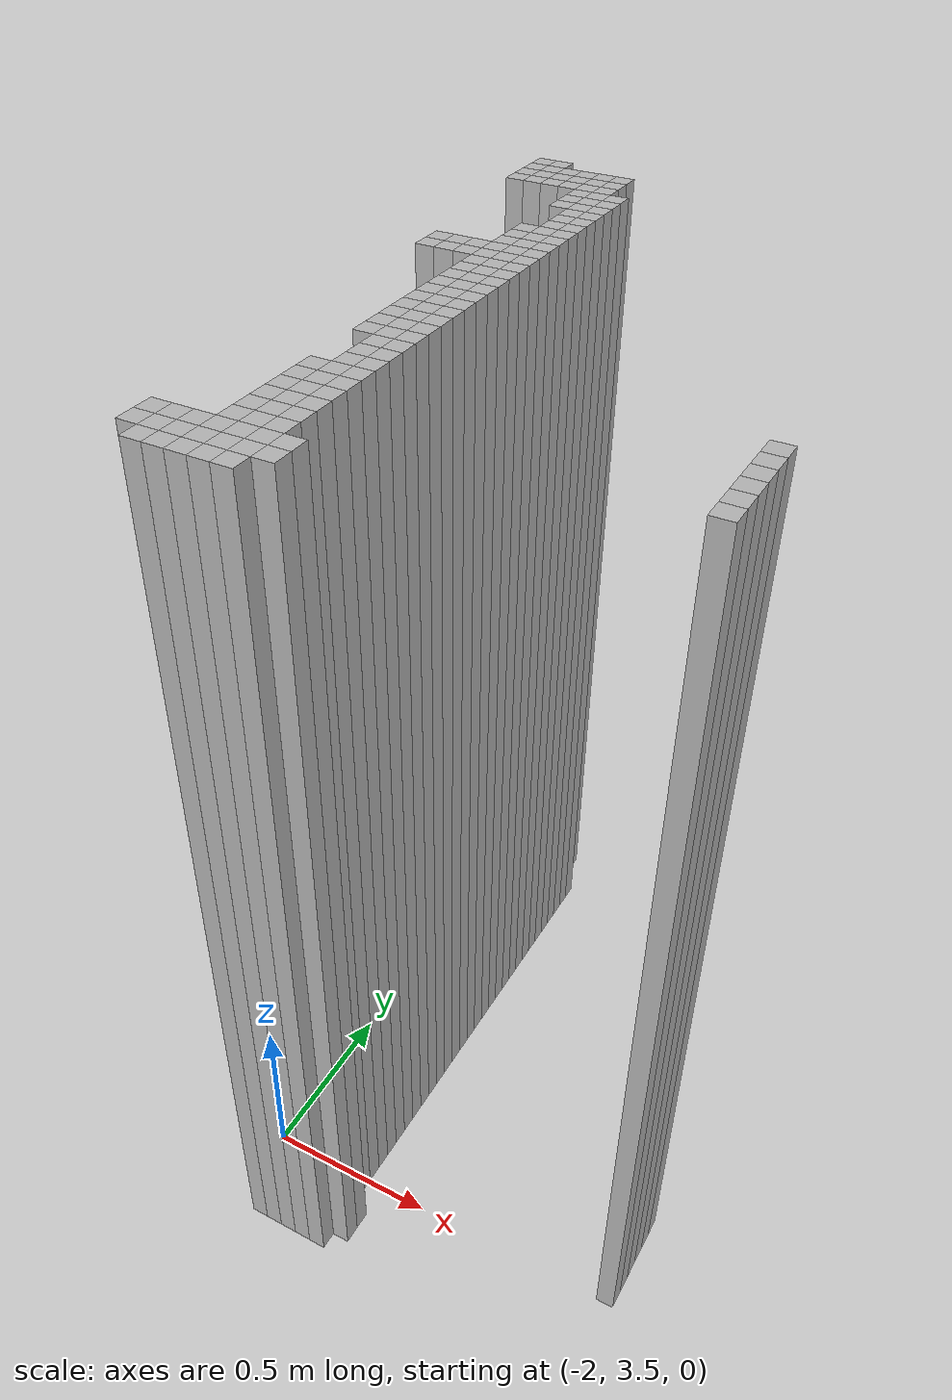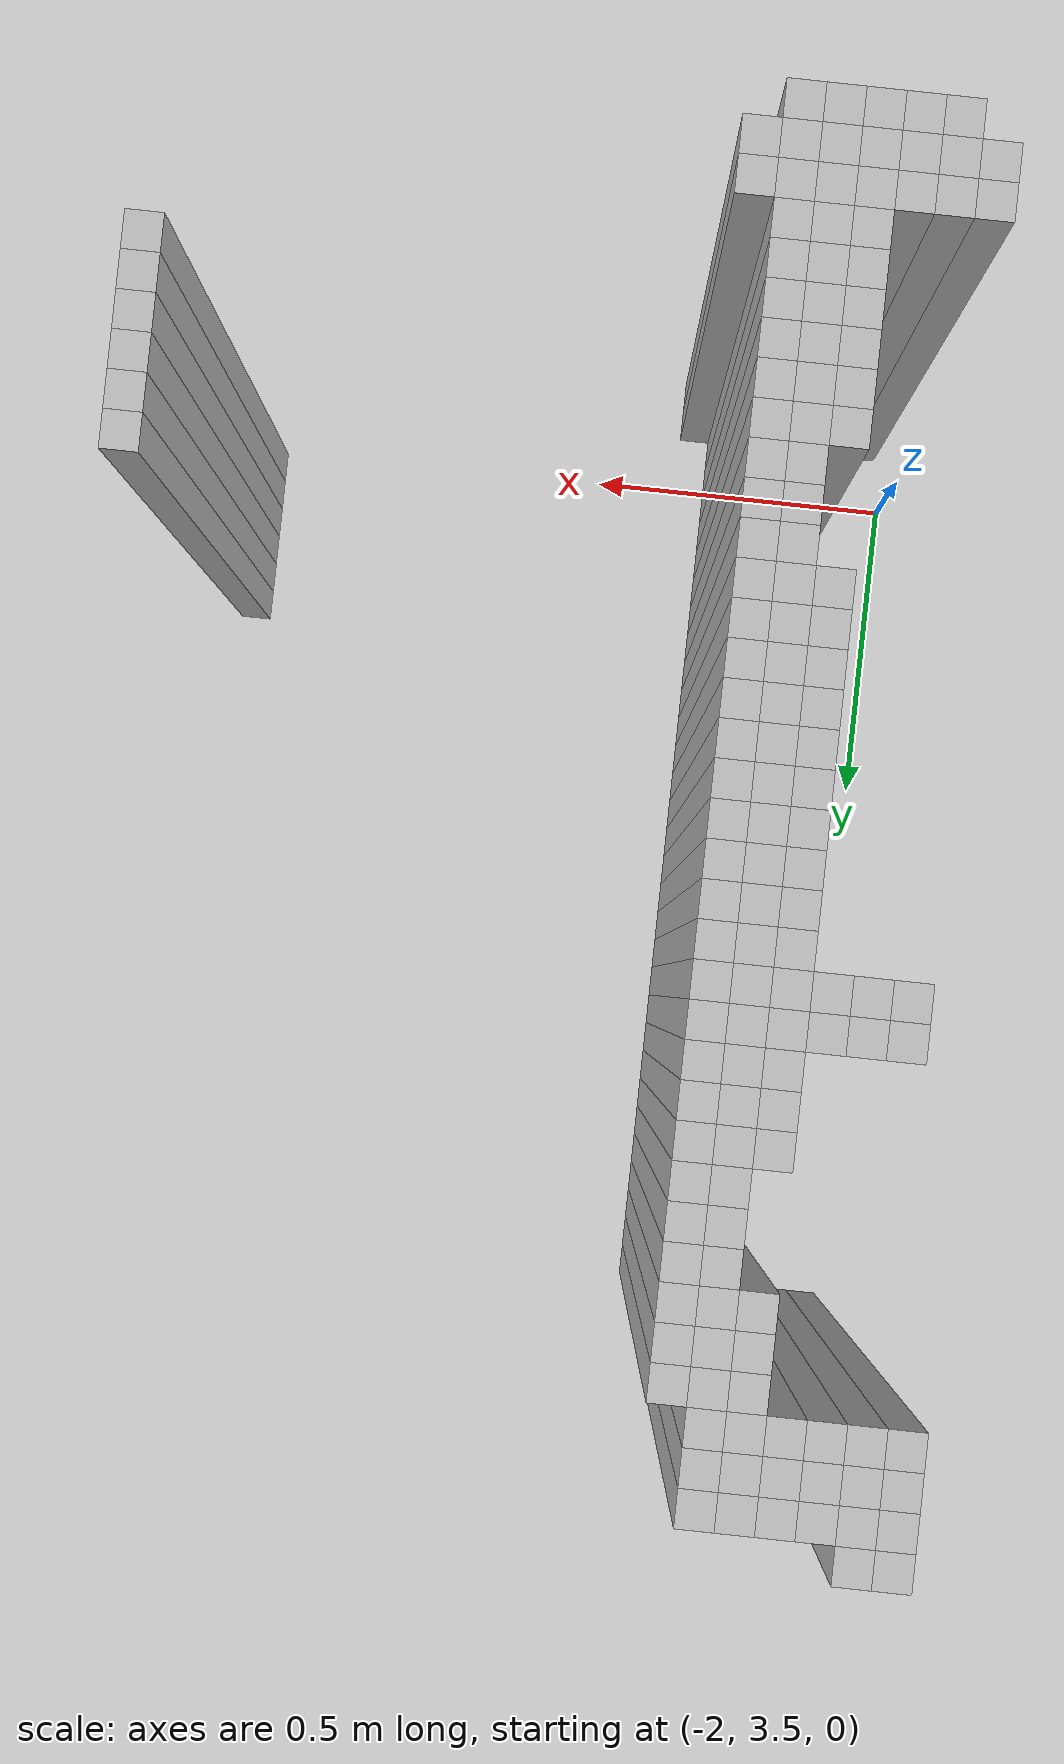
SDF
<sdf version="1.9">
 <world name="map_world">
  <model name="wall_183_52">
   <static>true</static>
   <pose>-2.011 5.080 1.250 0 0 0</pose>
   <link name="link">
    <collision name="collision"><geometry><box><size>0.050 0.050 2.500</size></box></geometry></collision>
    <visual name="visual"><geometry><box><size>0.050 0.050 2.500</size></box></geometry></visual>
   </link>
  </model>
  <model name="wall_184_52">
   <static>true</static>
   <pose>-1.961 5.080 1.250 0 0 0</pose>
   <link name="link">
    <collision name="collision"><geometry><box><size>0.050 0.050 2.500</size></box></geometry></collision>
    <visual name="visual"><geometry><box><size>0.050 0.050 2.500</size></box></geometry></visual>
   </link>
  </model>
  <model name="wall_183_53">
   <static>true</static>
   <pose>-2.011 5.030 1.250 0 0 0</pose>
   <link name="link">
    <collision name="collision"><geometry><box><size>0.050 0.050 2.500</size></box></geometry></collision>
    <visual name="visual"><geometry><box><size>0.050 0.050 2.500</size></box></geometry></visual>
   </link>
  </model>
  <model name="wall_184_53">
   <static>true</static>
   <pose>-1.961 5.030 1.250 0 0 0</pose>
   <link name="link">
    <collision name="collision"><geometry><box><size>0.050 0.050 2.500</size></box></geometry></collision>
    <visual name="visual"><geometry><box><size>0.050 0.050 2.500</size></box></geometry></visual>
   </link>
  </model>
  <model name="wall_185_53">
   <static>true</static>
   <pose>-1.911 5.030 1.250 0 0 0</pose>
   <link name="link">
    <collision name="collision"><geometry><box><size>0.050 0.050 2.500</size></box></geometry></collision>
    <visual name="visual"><geometry><box><size>0.050 0.050 2.500</size></box></geometry></visual>
   </link>
  </model>
  <model name="wall_186_53">
   <static>true</static>
   <pose>-1.861 5.030 1.250 0 0 0</pose>
   <link name="link">
    <collision name="collision"><geometry><box><size>0.050 0.050 2.500</size></box></geometry></collision>
    <visual name="visual"><geometry><box><size>0.050 0.050 2.500</size></box></geometry></visual>
   </link>
  </model>
  <model name="wall_187_53">
   <static>true</static>
   <pose>-1.811 5.030 1.250 0 0 0</pose>
   <link name="link">
    <collision name="collision"><geometry><box><size>0.050 0.050 2.500</size></box></geometry></collision>
    <visual name="visual"><geometry><box><size>0.050 0.050 2.500</size></box></geometry></visual>
   </link>
  </model>
  <model name="wall_188_53">
   <static>true</static>
   <pose>-1.761 5.030 1.250 0 0 0</pose>
   <link name="link">
    <collision name="collision"><geometry><box><size>0.050 0.050 2.500</size></box></geometry></collision>
    <visual name="visual"><geometry><box><size>0.050 0.050 2.500</size></box></geometry></visual>
   </link>
  </model>
  <model name="wall_183_54">
   <static>true</static>
   <pose>-2.011 4.980 1.250 0 0 0</pose>
   <link name="link">
    <collision name="collision"><geometry><box><size>0.050 0.050 2.500</size></box></geometry></collision>
    <visual name="visual"><geometry><box><size>0.050 0.050 2.500</size></box></geometry></visual>
   </link>
  </model>
  <model name="wall_184_54">
   <static>true</static>
   <pose>-1.961 4.980 1.250 0 0 0</pose>
   <link name="link">
    <collision name="collision"><geometry><box><size>0.050 0.050 2.500</size></box></geometry></collision>
    <visual name="visual"><geometry><box><size>0.050 0.050 2.500</size></box></geometry></visual>
   </link>
  </model>
  <model name="wall_185_54">
   <static>true</static>
   <pose>-1.911 4.980 1.250 0 0 0</pose>
   <link name="link">
    <collision name="collision"><geometry><box><size>0.050 0.050 2.500</size></box></geometry></collision>
    <visual name="visual"><geometry><box><size>0.050 0.050 2.500</size></box></geometry></visual>
   </link>
  </model>
  <model name="wall_186_54">
   <static>true</static>
   <pose>-1.861 4.980 1.250 0 0 0</pose>
   <link name="link">
    <collision name="collision"><geometry><box><size>0.050 0.050 2.500</size></box></geometry></collision>
    <visual name="visual"><geometry><box><size>0.050 0.050 2.500</size></box></geometry></visual>
   </link>
  </model>
  <model name="wall_187_54">
   <static>true</static>
   <pose>-1.811 4.980 1.250 0 0 0</pose>
   <link name="link">
    <collision name="collision"><geometry><box><size>0.050 0.050 2.500</size></box></geometry></collision>
    <visual name="visual"><geometry><box><size>0.050 0.050 2.500</size></box></geometry></visual>
   </link>
  </model>
  <model name="wall_188_54">
   <static>true</static>
   <pose>-1.761 4.980 1.250 0 0 0</pose>
   <link name="link">
    <collision name="collision"><geometry><box><size>0.050 0.050 2.500</size></box></geometry></collision>
    <visual name="visual"><geometry><box><size>0.050 0.050 2.500</size></box></geometry></visual>
   </link>
  </model>
  <model name="wall_183_55">
   <static>true</static>
   <pose>-2.011 4.930 1.250 0 0 0</pose>
   <link name="link">
    <collision name="collision"><geometry><box><size>0.050 0.050 2.500</size></box></geometry></collision>
    <visual name="visual"><geometry><box><size>0.050 0.050 2.500</size></box></geometry></visual>
   </link>
  </model>
  <model name="wall_184_55">
   <static>true</static>
   <pose>-1.961 4.930 1.250 0 0 0</pose>
   <link name="link">
    <collision name="collision"><geometry><box><size>0.050 0.050 2.500</size></box></geometry></collision>
    <visual name="visual"><geometry><box><size>0.050 0.050 2.500</size></box></geometry></visual>
   </link>
  </model>
  <model name="wall_185_55">
   <static>true</static>
   <pose>-1.911 4.930 1.250 0 0 0</pose>
   <link name="link">
    <collision name="collision"><geometry><box><size>0.050 0.050 2.500</size></box></geometry></collision>
    <visual name="visual"><geometry><box><size>0.050 0.050 2.500</size></box></geometry></visual>
   </link>
  </model>
  <model name="wall_186_55">
   <static>true</static>
   <pose>-1.861 4.930 1.250 0 0 0</pose>
   <link name="link">
    <collision name="collision"><geometry><box><size>0.050 0.050 2.500</size></box></geometry></collision>
    <visual name="visual"><geometry><box><size>0.050 0.050 2.500</size></box></geometry></visual>
   </link>
  </model>
  <model name="wall_187_55">
   <static>true</static>
   <pose>-1.811 4.930 1.250 0 0 0</pose>
   <link name="link">
    <collision name="collision"><geometry><box><size>0.050 0.050 2.500</size></box></geometry></collision>
    <visual name="visual"><geometry><box><size>0.050 0.050 2.500</size></box></geometry></visual>
   </link>
  </model>
  <model name="wall_188_55">
   <static>true</static>
   <pose>-1.761 4.930 1.250 0 0 0</pose>
   <link name="link">
    <collision name="collision"><geometry><box><size>0.050 0.050 2.500</size></box></geometry></collision>
    <visual name="visual"><geometry><box><size>0.050 0.050 2.500</size></box></geometry></visual>
   </link>
  </model>
  <model name="wall_187_56">
   <static>true</static>
   <pose>-1.811 4.880 1.250 0 0 0</pose>
   <link name="link">
    <collision name="collision"><geometry><box><size>0.050 0.050 2.500</size></box></geometry></collision>
    <visual name="visual"><geometry><box><size>0.050 0.050 2.500</size></box></geometry></visual>
   </link>
  </model>
  <model name="wall_188_56">
   <static>true</static>
   <pose>-1.761 4.880 1.250 0 0 0</pose>
   <link name="link">
    <collision name="collision"><geometry><box><size>0.050 0.050 2.500</size></box></geometry></collision>
    <visual name="visual"><geometry><box><size>0.050 0.050 2.500</size></box></geometry></visual>
   </link>
  </model>
  <model name="wall_189_56">
   <static>true</static>
   <pose>-1.711 4.880 1.250 0 0 0</pose>
   <link name="link">
    <collision name="collision"><geometry><box><size>0.050 0.050 2.500</size></box></geometry></collision>
    <visual name="visual"><geometry><box><size>0.050 0.050 2.500</size></box></geometry></visual>
   </link>
  </model>
  <model name="wall_187_57">
   <static>true</static>
   <pose>-1.811 4.830 1.250 0 0 0</pose>
   <link name="link">
    <collision name="collision"><geometry><box><size>0.050 0.050 2.500</size></box></geometry></collision>
    <visual name="visual"><geometry><box><size>0.050 0.050 2.500</size></box></geometry></visual>
   </link>
  </model>
  <model name="wall_188_57">
   <static>true</static>
   <pose>-1.761 4.830 1.250 0 0 0</pose>
   <link name="link">
    <collision name="collision"><geometry><box><size>0.050 0.050 2.500</size></box></geometry></collision>
    <visual name="visual"><geometry><box><size>0.050 0.050 2.500</size></box></geometry></visual>
   </link>
  </model>
  <model name="wall_189_57">
   <static>true</static>
   <pose>-1.711 4.830 1.250 0 0 0</pose>
   <link name="link">
    <collision name="collision"><geometry><box><size>0.050 0.050 2.500</size></box></geometry></collision>
    <visual name="visual"><geometry><box><size>0.050 0.050 2.500</size></box></geometry></visual>
   </link>
  </model>
  <model name="wall_187_58">
   <static>true</static>
   <pose>-1.811 4.780 1.250 0 0 0</pose>
   <link name="link">
    <collision name="collision"><geometry><box><size>0.050 0.050 2.500</size></box></geometry></collision>
    <visual name="visual"><geometry><box><size>0.050 0.050 2.500</size></box></geometry></visual>
   </link>
  </model>
  <model name="wall_188_58">
   <static>true</static>
   <pose>-1.761 4.780 1.250 0 0 0</pose>
   <link name="link">
    <collision name="collision"><geometry><box><size>0.050 0.050 2.500</size></box></geometry></collision>
    <visual name="visual"><geometry><box><size>0.050 0.050 2.500</size></box></geometry></visual>
   </link>
  </model>
  <model name="wall_189_58">
   <static>true</static>
   <pose>-1.711 4.780 1.250 0 0 0</pose>
   <link name="link">
    <collision name="collision"><geometry><box><size>0.050 0.050 2.500</size></box></geometry></collision>
    <visual name="visual"><geometry><box><size>0.050 0.050 2.500</size></box></geometry></visual>
   </link>
  </model>
  <model name="wall_188_59">
   <static>true</static>
   <pose>-1.761 4.730 1.250 0 0 0</pose>
   <link name="link">
    <collision name="collision"><geometry><box><size>0.050 0.050 2.500</size></box></geometry></collision>
    <visual name="visual"><geometry><box><size>0.050 0.050 2.500</size></box></geometry></visual>
   </link>
  </model>
  <model name="wall_189_59">
   <static>true</static>
   <pose>-1.711 4.730 1.250 0 0 0</pose>
   <link name="link">
    <collision name="collision"><geometry><box><size>0.050 0.050 2.500</size></box></geometry></collision>
    <visual name="visual"><geometry><box><size>0.050 0.050 2.500</size></box></geometry></visual>
   </link>
  </model>
  <model name="wall_188_60">
   <static>true</static>
   <pose>-1.761 4.680 1.250 0 0 0</pose>
   <link name="link">
    <collision name="collision"><geometry><box><size>0.050 0.050 2.500</size></box></geometry></collision>
    <visual name="visual"><geometry><box><size>0.050 0.050 2.500</size></box></geometry></visual>
   </link>
  </model>
  <model name="wall_189_60">
   <static>true</static>
   <pose>-1.711 4.680 1.250 0 0 0</pose>
   <link name="link">
    <collision name="collision"><geometry><box><size>0.050 0.050 2.500</size></box></geometry></collision>
    <visual name="visual"><geometry><box><size>0.050 0.050 2.500</size></box></geometry></visual>
   </link>
  </model>
  <model name="wall_188_61">
   <static>true</static>
   <pose>-1.761 4.630 1.250 0 0 0</pose>
   <link name="link">
    <collision name="collision"><geometry><box><size>0.050 0.050 2.500</size></box></geometry></collision>
    <visual name="visual"><geometry><box><size>0.050 0.050 2.500</size></box></geometry></visual>
   </link>
  </model>
  <model name="wall_189_61">
   <static>true</static>
   <pose>-1.711 4.630 1.250 0 0 0</pose>
   <link name="link">
    <collision name="collision"><geometry><box><size>0.050 0.050 2.500</size></box></geometry></collision>
    <visual name="visual"><geometry><box><size>0.050 0.050 2.500</size></box></geometry></visual>
   </link>
  </model>
  <model name="wall_187_62">
   <static>true</static>
   <pose>-1.811 4.580 1.250 0 0 0</pose>
   <link name="link">
    <collision name="collision"><geometry><box><size>0.050 0.050 2.500</size></box></geometry></collision>
    <visual name="visual"><geometry><box><size>0.050 0.050 2.500</size></box></geometry></visual>
   </link>
  </model>
  <model name="wall_188_62">
   <static>true</static>
   <pose>-1.761 4.580 1.250 0 0 0</pose>
   <link name="link">
    <collision name="collision"><geometry><box><size>0.050 0.050 2.500</size></box></geometry></collision>
    <visual name="visual"><geometry><box><size>0.050 0.050 2.500</size></box></geometry></visual>
   </link>
  </model>
  <model name="wall_189_62">
   <static>true</static>
   <pose>-1.711 4.580 1.250 0 0 0</pose>
   <link name="link">
    <collision name="collision"><geometry><box><size>0.050 0.050 2.500</size></box></geometry></collision>
    <visual name="visual"><geometry><box><size>0.050 0.050 2.500</size></box></geometry></visual>
   </link>
  </model>
  <model name="wall_187_63">
   <static>true</static>
   <pose>-1.811 4.530 1.250 0 0 0</pose>
   <link name="link">
    <collision name="collision"><geometry><box><size>0.050 0.050 2.500</size></box></geometry></collision>
    <visual name="visual"><geometry><box><size>0.050 0.050 2.500</size></box></geometry></visual>
   </link>
  </model>
  <model name="wall_188_63">
   <static>true</static>
   <pose>-1.761 4.530 1.250 0 0 0</pose>
   <link name="link">
    <collision name="collision"><geometry><box><size>0.050 0.050 2.500</size></box></geometry></collision>
    <visual name="visual"><geometry><box><size>0.050 0.050 2.500</size></box></geometry></visual>
   </link>
  </model>
  <model name="wall_189_63">
   <static>true</static>
   <pose>-1.711 4.530 1.250 0 0 0</pose>
   <link name="link">
    <collision name="collision"><geometry><box><size>0.050 0.050 2.500</size></box></geometry></collision>
    <visual name="visual"><geometry><box><size>0.050 0.050 2.500</size></box></geometry></visual>
   </link>
  </model>
  <model name="wall_187_64">
   <static>true</static>
   <pose>-1.811 4.480 1.250 0 0 0</pose>
   <link name="link">
    <collision name="collision"><geometry><box><size>0.050 0.050 2.500</size></box></geometry></collision>
    <visual name="visual"><geometry><box><size>0.050 0.050 2.500</size></box></geometry></visual>
   </link>
  </model>
  <model name="wall_188_64">
   <static>true</static>
   <pose>-1.761 4.480 1.250 0 0 0</pose>
   <link name="link">
    <collision name="collision"><geometry><box><size>0.050 0.050 2.500</size></box></geometry></collision>
    <visual name="visual"><geometry><box><size>0.050 0.050 2.500</size></box></geometry></visual>
   </link>
  </model>
  <model name="wall_189_64">
   <static>true</static>
   <pose>-1.711 4.480 1.250 0 0 0</pose>
   <link name="link">
    <collision name="collision"><geometry><box><size>0.050 0.050 2.500</size></box></geometry></collision>
    <visual name="visual"><geometry><box><size>0.050 0.050 2.500</size></box></geometry></visual>
   </link>
  </model>
  <model name="wall_184_65">
   <static>true</static>
   <pose>-1.961 4.430 1.250 0 0 0</pose>
   <link name="link">
    <collision name="collision"><geometry><box><size>0.050 0.050 2.500</size></box></geometry></collision>
    <visual name="visual"><geometry><box><size>0.050 0.050 2.500</size></box></geometry></visual>
   </link>
  </model>
  <model name="wall_185_65">
   <static>true</static>
   <pose>-1.911 4.430 1.250 0 0 0</pose>
   <link name="link">
    <collision name="collision"><geometry><box><size>0.050 0.050 2.500</size></box></geometry></collision>
    <visual name="visual"><geometry><box><size>0.050 0.050 2.500</size></box></geometry></visual>
   </link>
  </model>
  <model name="wall_186_65">
   <static>true</static>
   <pose>-1.861 4.430 1.250 0 0 0</pose>
   <link name="link">
    <collision name="collision"><geometry><box><size>0.050 0.050 2.500</size></box></geometry></collision>
    <visual name="visual"><geometry><box><size>0.050 0.050 2.500</size></box></geometry></visual>
   </link>
  </model>
  <model name="wall_187_65">
   <static>true</static>
   <pose>-1.811 4.430 1.250 0 0 0</pose>
   <link name="link">
    <collision name="collision"><geometry><box><size>0.050 0.050 2.500</size></box></geometry></collision>
    <visual name="visual"><geometry><box><size>0.050 0.050 2.500</size></box></geometry></visual>
   </link>
  </model>
  <model name="wall_188_65">
   <static>true</static>
   <pose>-1.761 4.430 1.250 0 0 0</pose>
   <link name="link">
    <collision name="collision"><geometry><box><size>0.050 0.050 2.500</size></box></geometry></collision>
    <visual name="visual"><geometry><box><size>0.050 0.050 2.500</size></box></geometry></visual>
   </link>
  </model>
  <model name="wall_189_65">
   <static>true</static>
   <pose>-1.711 4.430 1.250 0 0 0</pose>
   <link name="link">
    <collision name="collision"><geometry><box><size>0.050 0.050 2.500</size></box></geometry></collision>
    <visual name="visual"><geometry><box><size>0.050 0.050 2.500</size></box></geometry></visual>
   </link>
  </model>
  <model name="wall_184_66">
   <static>true</static>
   <pose>-1.961 4.380 1.250 0 0 0</pose>
   <link name="link">
    <collision name="collision"><geometry><box><size>0.050 0.050 2.500</size></box></geometry></collision>
    <visual name="visual"><geometry><box><size>0.050 0.050 2.500</size></box></geometry></visual>
   </link>
  </model>
  <model name="wall_185_66">
   <static>true</static>
   <pose>-1.911 4.380 1.250 0 0 0</pose>
   <link name="link">
    <collision name="collision"><geometry><box><size>0.050 0.050 2.500</size></box></geometry></collision>
    <visual name="visual"><geometry><box><size>0.050 0.050 2.500</size></box></geometry></visual>
   </link>
  </model>
  <model name="wall_186_66">
   <static>true</static>
   <pose>-1.861 4.380 1.250 0 0 0</pose>
   <link name="link">
    <collision name="collision"><geometry><box><size>0.050 0.050 2.500</size></box></geometry></collision>
    <visual name="visual"><geometry><box><size>0.050 0.050 2.500</size></box></geometry></visual>
   </link>
  </model>
  <model name="wall_187_66">
   <static>true</static>
   <pose>-1.811 4.380 1.250 0 0 0</pose>
   <link name="link">
    <collision name="collision"><geometry><box><size>0.050 0.050 2.500</size></box></geometry></collision>
    <visual name="visual"><geometry><box><size>0.050 0.050 2.500</size></box></geometry></visual>
   </link>
  </model>
  <model name="wall_188_66">
   <static>true</static>
   <pose>-1.761 4.380 1.250 0 0 0</pose>
   <link name="link">
    <collision name="collision"><geometry><box><size>0.050 0.050 2.500</size></box></geometry></collision>
    <visual name="visual"><geometry><box><size>0.050 0.050 2.500</size></box></geometry></visual>
   </link>
  </model>
  <model name="wall_189_66">
   <static>true</static>
   <pose>-1.711 4.380 1.250 0 0 0</pose>
   <link name="link">
    <collision name="collision"><geometry><box><size>0.050 0.050 2.500</size></box></geometry></collision>
    <visual name="visual"><geometry><box><size>0.050 0.050 2.500</size></box></geometry></visual>
   </link>
  </model>
  <model name="wall_187_67">
   <static>true</static>
   <pose>-1.811 4.330 1.250 0 0 0</pose>
   <link name="link">
    <collision name="collision"><geometry><box><size>0.050 0.050 2.500</size></box></geometry></collision>
    <visual name="visual"><geometry><box><size>0.050 0.050 2.500</size></box></geometry></visual>
   </link>
  </model>
  <model name="wall_188_67">
   <static>true</static>
   <pose>-1.761 4.330 1.250 0 0 0</pose>
   <link name="link">
    <collision name="collision"><geometry><box><size>0.050 0.050 2.500</size></box></geometry></collision>
    <visual name="visual"><geometry><box><size>0.050 0.050 2.500</size></box></geometry></visual>
   </link>
  </model>
  <model name="wall_189_67">
   <static>true</static>
   <pose>-1.711 4.330 1.250 0 0 0</pose>
   <link name="link">
    <collision name="collision"><geometry><box><size>0.050 0.050 2.500</size></box></geometry></collision>
    <visual name="visual"><geometry><box><size>0.050 0.050 2.500</size></box></geometry></visual>
   </link>
  </model>
  <model name="wall_187_68">
   <static>true</static>
   <pose>-1.811 4.280 1.250 0 0 0</pose>
   <link name="link">
    <collision name="collision"><geometry><box><size>0.050 0.050 2.500</size></box></geometry></collision>
    <visual name="visual"><geometry><box><size>0.050 0.050 2.500</size></box></geometry></visual>
   </link>
  </model>
  <model name="wall_188_68">
   <static>true</static>
   <pose>-1.761 4.280 1.250 0 0 0</pose>
   <link name="link">
    <collision name="collision"><geometry><box><size>0.050 0.050 2.500</size></box></geometry></collision>
    <visual name="visual"><geometry><box><size>0.050 0.050 2.500</size></box></geometry></visual>
   </link>
  </model>
  <model name="wall_189_68">
   <static>true</static>
   <pose>-1.711 4.280 1.250 0 0 0</pose>
   <link name="link">
    <collision name="collision"><geometry><box><size>0.050 0.050 2.500</size></box></geometry></collision>
    <visual name="visual"><geometry><box><size>0.050 0.050 2.500</size></box></geometry></visual>
   </link>
  </model>
  <model name="wall_187_69">
   <static>true</static>
   <pose>-1.811 4.230 1.250 0 0 0</pose>
   <link name="link">
    <collision name="collision"><geometry><box><size>0.050 0.050 2.500</size></box></geometry></collision>
    <visual name="visual"><geometry><box><size>0.050 0.050 2.500</size></box></geometry></visual>
   </link>
  </model>
  <model name="wall_188_69">
   <static>true</static>
   <pose>-1.761 4.230 1.250 0 0 0</pose>
   <link name="link">
    <collision name="collision"><geometry><box><size>0.050 0.050 2.500</size></box></geometry></collision>
    <visual name="visual"><geometry><box><size>0.050 0.050 2.500</size></box></geometry></visual>
   </link>
  </model>
  <model name="wall_189_69">
   <static>true</static>
   <pose>-1.711 4.230 1.250 0 0 0</pose>
   <link name="link">
    <collision name="collision"><geometry><box><size>0.050 0.050 2.500</size></box></geometry></collision>
    <visual name="visual"><geometry><box><size>0.050 0.050 2.500</size></box></geometry></visual>
   </link>
  </model>
  <model name="wall_187_70">
   <static>true</static>
   <pose>-1.811 4.180 1.250 0 0 0</pose>
   <link name="link">
    <collision name="collision"><geometry><box><size>0.050 0.050 2.500</size></box></geometry></collision>
    <visual name="visual"><geometry><box><size>0.050 0.050 2.500</size></box></geometry></visual>
   </link>
  </model>
  <model name="wall_188_70">
   <static>true</static>
   <pose>-1.761 4.180 1.250 0 0 0</pose>
   <link name="link">
    <collision name="collision"><geometry><box><size>0.050 0.050 2.500</size></box></geometry></collision>
    <visual name="visual"><geometry><box><size>0.050 0.050 2.500</size></box></geometry></visual>
   </link>
  </model>
  <model name="wall_189_70">
   <static>true</static>
   <pose>-1.711 4.180 1.250 0 0 0</pose>
   <link name="link">
    <collision name="collision"><geometry><box><size>0.050 0.050 2.500</size></box></geometry></collision>
    <visual name="visual"><geometry><box><size>0.050 0.050 2.500</size></box></geometry></visual>
   </link>
  </model>
  <model name="wall_187_71">
   <static>true</static>
   <pose>-1.811 4.130 1.250 0 0 0</pose>
   <link name="link">
    <collision name="collision"><geometry><box><size>0.050 0.050 2.500</size></box></geometry></collision>
    <visual name="visual"><geometry><box><size>0.050 0.050 2.500</size></box></geometry></visual>
   </link>
  </model>
  <model name="wall_188_71">
   <static>true</static>
   <pose>-1.761 4.130 1.250 0 0 0</pose>
   <link name="link">
    <collision name="collision"><geometry><box><size>0.050 0.050 2.500</size></box></geometry></collision>
    <visual name="visual"><geometry><box><size>0.050 0.050 2.500</size></box></geometry></visual>
   </link>
  </model>
  <model name="wall_189_71">
   <static>true</static>
   <pose>-1.711 4.130 1.250 0 0 0</pose>
   <link name="link">
    <collision name="collision"><geometry><box><size>0.050 0.050 2.500</size></box></geometry></collision>
    <visual name="visual"><geometry><box><size>0.050 0.050 2.500</size></box></geometry></visual>
   </link>
  </model>
  <model name="wall_187_72">
   <static>true</static>
   <pose>-1.811 4.080 1.250 0 0 0</pose>
   <link name="link">
    <collision name="collision"><geometry><box><size>0.050 0.050 2.500</size></box></geometry></collision>
    <visual name="visual"><geometry><box><size>0.050 0.050 2.500</size></box></geometry></visual>
   </link>
  </model>
  <model name="wall_188_72">
   <static>true</static>
   <pose>-1.761 4.080 1.250 0 0 0</pose>
   <link name="link">
    <collision name="collision"><geometry><box><size>0.050 0.050 2.500</size></box></geometry></collision>
    <visual name="visual"><geometry><box><size>0.050 0.050 2.500</size></box></geometry></visual>
   </link>
  </model>
  <model name="wall_189_72">
   <static>true</static>
   <pose>-1.711 4.080 1.250 0 0 0</pose>
   <link name="link">
    <collision name="collision"><geometry><box><size>0.050 0.050 2.500</size></box></geometry></collision>
    <visual name="visual"><geometry><box><size>0.050 0.050 2.500</size></box></geometry></visual>
   </link>
  </model>
  <model name="wall_187_73">
   <static>true</static>
   <pose>-1.811 4.030 1.250 0 0 0</pose>
   <link name="link">
    <collision name="collision"><geometry><box><size>0.050 0.050 2.500</size></box></geometry></collision>
    <visual name="visual"><geometry><box><size>0.050 0.050 2.500</size></box></geometry></visual>
   </link>
  </model>
  <model name="wall_188_73">
   <static>true</static>
   <pose>-1.761 4.030 1.250 0 0 0</pose>
   <link name="link">
    <collision name="collision"><geometry><box><size>0.050 0.050 2.500</size></box></geometry></collision>
    <visual name="visual"><geometry><box><size>0.050 0.050 2.500</size></box></geometry></visual>
   </link>
  </model>
  <model name="wall_189_73">
   <static>true</static>
   <pose>-1.711 4.030 1.250 0 0 0</pose>
   <link name="link">
    <collision name="collision"><geometry><box><size>0.050 0.050 2.500</size></box></geometry></collision>
    <visual name="visual"><geometry><box><size>0.050 0.050 2.500</size></box></geometry></visual>
   </link>
  </model>
  <model name="wall_187_74">
   <static>true</static>
   <pose>-1.811 3.980 1.250 0 0 0</pose>
   <link name="link">
    <collision name="collision"><geometry><box><size>0.050 0.050 2.500</size></box></geometry></collision>
    <visual name="visual"><geometry><box><size>0.050 0.050 2.500</size></box></geometry></visual>
   </link>
  </model>
  <model name="wall_188_74">
   <static>true</static>
   <pose>-1.761 3.980 1.250 0 0 0</pose>
   <link name="link">
    <collision name="collision"><geometry><box><size>0.050 0.050 2.500</size></box></geometry></collision>
    <visual name="visual"><geometry><box><size>0.050 0.050 2.500</size></box></geometry></visual>
   </link>
  </model>
  <model name="wall_189_74">
   <static>true</static>
   <pose>-1.711 3.980 1.250 0 0 0</pose>
   <link name="link">
    <collision name="collision"><geometry><box><size>0.050 0.050 2.500</size></box></geometry></collision>
    <visual name="visual"><geometry><box><size>0.050 0.050 2.500</size></box></geometry></visual>
   </link>
  </model>
  <model name="wall_187_75">
   <static>true</static>
   <pose>-1.811 3.930 1.250 0 0 0</pose>
   <link name="link">
    <collision name="collision"><geometry><box><size>0.050 0.050 2.500</size></box></geometry></collision>
    <visual name="visual"><geometry><box><size>0.050 0.050 2.500</size></box></geometry></visual>
   </link>
  </model>
  <model name="wall_188_75">
   <static>true</static>
   <pose>-1.761 3.930 1.250 0 0 0</pose>
   <link name="link">
    <collision name="collision"><geometry><box><size>0.050 0.050 2.500</size></box></geometry></collision>
    <visual name="visual"><geometry><box><size>0.050 0.050 2.500</size></box></geometry></visual>
   </link>
  </model>
  <model name="wall_189_75">
   <static>true</static>
   <pose>-1.711 3.930 1.250 0 0 0</pose>
   <link name="link">
    <collision name="collision"><geometry><box><size>0.050 0.050 2.500</size></box></geometry></collision>
    <visual name="visual"><geometry><box><size>0.050 0.050 2.500</size></box></geometry></visual>
   </link>
  </model>
  <model name="wall_187_76">
   <static>true</static>
   <pose>-1.811 3.880 1.250 0 0 0</pose>
   <link name="link">
    <collision name="collision"><geometry><box><size>0.050 0.050 2.500</size></box></geometry></collision>
    <visual name="visual"><geometry><box><size>0.050 0.050 2.500</size></box></geometry></visual>
   </link>
  </model>
  <model name="wall_188_76">
   <static>true</static>
   <pose>-1.761 3.880 1.250 0 0 0</pose>
   <link name="link">
    <collision name="collision"><geometry><box><size>0.050 0.050 2.500</size></box></geometry></collision>
    <visual name="visual"><geometry><box><size>0.050 0.050 2.500</size></box></geometry></visual>
   </link>
  </model>
  <model name="wall_189_76">
   <static>true</static>
   <pose>-1.711 3.880 1.250 0 0 0</pose>
   <link name="link">
    <collision name="collision"><geometry><box><size>0.050 0.050 2.500</size></box></geometry></collision>
    <visual name="visual"><geometry><box><size>0.050 0.050 2.500</size></box></geometry></visual>
   </link>
  </model>
  <model name="wall_188_77">
   <static>true</static>
   <pose>-1.761 3.830 1.250 0 0 0</pose>
   <link name="link">
    <collision name="collision"><geometry><box><size>0.050 0.050 2.500</size></box></geometry></collision>
    <visual name="visual"><geometry><box><size>0.050 0.050 2.500</size></box></geometry></visual>
   </link>
  </model>
  <model name="wall_189_77">
   <static>true</static>
   <pose>-1.711 3.830 1.250 0 0 0</pose>
   <link name="link">
    <collision name="collision"><geometry><box><size>0.050 0.050 2.500</size></box></geometry></collision>
    <visual name="visual"><geometry><box><size>0.050 0.050 2.500</size></box></geometry></visual>
   </link>
  </model>
  <model name="wall_188_78">
   <static>true</static>
   <pose>-1.761 3.780 1.250 0 0 0</pose>
   <link name="link">
    <collision name="collision"><geometry><box><size>0.050 0.050 2.500</size></box></geometry></collision>
    <visual name="visual"><geometry><box><size>0.050 0.050 2.500</size></box></geometry></visual>
   </link>
  </model>
  <model name="wall_189_78">
   <static>true</static>
   <pose>-1.711 3.780 1.250 0 0 0</pose>
   <link name="link">
    <collision name="collision"><geometry><box><size>0.050 0.050 2.500</size></box></geometry></collision>
    <visual name="visual"><geometry><box><size>0.050 0.050 2.500</size></box></geometry></visual>
   </link>
  </model>
  <model name="wall_205_78">
   <static>true</static>
   <pose>-0.911 3.780 1.250 0 0 0</pose>
   <link name="link">
    <collision name="collision"><geometry><box><size>0.050 0.050 2.500</size></box></geometry></collision>
    <visual name="visual"><geometry><box><size>0.050 0.050 2.500</size></box></geometry></visual>
   </link>
  </model>
  <model name="wall_188_79">
   <static>true</static>
   <pose>-1.761 3.730 1.250 0 0 0</pose>
   <link name="link">
    <collision name="collision"><geometry><box><size>0.050 0.050 2.500</size></box></geometry></collision>
    <visual name="visual"><geometry><box><size>0.050 0.050 2.500</size></box></geometry></visual>
   </link>
  </model>
  <model name="wall_189_79">
   <static>true</static>
   <pose>-1.711 3.730 1.250 0 0 0</pose>
   <link name="link">
    <collision name="collision"><geometry><box><size>0.050 0.050 2.500</size></box></geometry></collision>
    <visual name="visual"><geometry><box><size>0.050 0.050 2.500</size></box></geometry></visual>
   </link>
  </model>
  <model name="wall_205_79">
   <static>true</static>
   <pose>-0.911 3.730 1.250 0 0 0</pose>
   <link name="link">
    <collision name="collision"><geometry><box><size>0.050 0.050 2.500</size></box></geometry></collision>
    <visual name="visual"><geometry><box><size>0.050 0.050 2.500</size></box></geometry></visual>
   </link>
  </model>
  <model name="wall_187_80">
   <static>true</static>
   <pose>-1.811 3.680 1.250 0 0 0</pose>
   <link name="link">
    <collision name="collision"><geometry><box><size>0.050 0.050 2.500</size></box></geometry></collision>
    <visual name="visual"><geometry><box><size>0.050 0.050 2.500</size></box></geometry></visual>
   </link>
  </model>
  <model name="wall_188_80">
   <static>true</static>
   <pose>-1.761 3.680 1.250 0 0 0</pose>
   <link name="link">
    <collision name="collision"><geometry><box><size>0.050 0.050 2.500</size></box></geometry></collision>
    <visual name="visual"><geometry><box><size>0.050 0.050 2.500</size></box></geometry></visual>
   </link>
  </model>
  <model name="wall_189_80">
   <static>true</static>
   <pose>-1.711 3.680 1.250 0 0 0</pose>
   <link name="link">
    <collision name="collision"><geometry><box><size>0.050 0.050 2.500</size></box></geometry></collision>
    <visual name="visual"><geometry><box><size>0.050 0.050 2.500</size></box></geometry></visual>
   </link>
  </model>
  <model name="wall_205_80">
   <static>true</static>
   <pose>-0.911 3.680 1.250 0 0 0</pose>
   <link name="link">
    <collision name="collision"><geometry><box><size>0.050 0.050 2.500</size></box></geometry></collision>
    <visual name="visual"><geometry><box><size>0.050 0.050 2.500</size></box></geometry></visual>
   </link>
  </model>
  <model name="wall_187_81">
   <static>true</static>
   <pose>-1.811 3.630 1.250 0 0 0</pose>
   <link name="link">
    <collision name="collision"><geometry><box><size>0.050 0.050 2.500</size></box></geometry></collision>
    <visual name="visual"><geometry><box><size>0.050 0.050 2.500</size></box></geometry></visual>
   </link>
  </model>
  <model name="wall_188_81">
   <static>true</static>
   <pose>-1.761 3.630 1.250 0 0 0</pose>
   <link name="link">
    <collision name="collision"><geometry><box><size>0.050 0.050 2.500</size></box></geometry></collision>
    <visual name="visual"><geometry><box><size>0.050 0.050 2.500</size></box></geometry></visual>
   </link>
  </model>
  <model name="wall_189_81">
   <static>true</static>
   <pose>-1.711 3.630 1.250 0 0 0</pose>
   <link name="link">
    <collision name="collision"><geometry><box><size>0.050 0.050 2.500</size></box></geometry></collision>
    <visual name="visual"><geometry><box><size>0.050 0.050 2.500</size></box></geometry></visual>
   </link>
  </model>
  <model name="wall_205_81">
   <static>true</static>
   <pose>-0.911 3.630 1.250 0 0 0</pose>
   <link name="link">
    <collision name="collision"><geometry><box><size>0.050 0.050 2.500</size></box></geometry></collision>
    <visual name="visual"><geometry><box><size>0.050 0.050 2.500</size></box></geometry></visual>
   </link>
  </model>
  <model name="wall_187_82">
   <static>true</static>
   <pose>-1.811 3.580 1.250 0 0 0</pose>
   <link name="link">
    <collision name="collision"><geometry><box><size>0.050 0.050 2.500</size></box></geometry></collision>
    <visual name="visual"><geometry><box><size>0.050 0.050 2.500</size></box></geometry></visual>
   </link>
  </model>
  <model name="wall_188_82">
   <static>true</static>
   <pose>-1.761 3.580 1.250 0 0 0</pose>
   <link name="link">
    <collision name="collision"><geometry><box><size>0.050 0.050 2.500</size></box></geometry></collision>
    <visual name="visual"><geometry><box><size>0.050 0.050 2.500</size></box></geometry></visual>
   </link>
  </model>
  <model name="wall_189_82">
   <static>true</static>
   <pose>-1.711 3.580 1.250 0 0 0</pose>
   <link name="link">
    <collision name="collision"><geometry><box><size>0.050 0.050 2.500</size></box></geometry></collision>
    <visual name="visual"><geometry><box><size>0.050 0.050 2.500</size></box></geometry></visual>
   </link>
  </model>
  <model name="wall_205_82">
   <static>true</static>
   <pose>-0.911 3.580 1.250 0 0 0</pose>
   <link name="link">
    <collision name="collision"><geometry><box><size>0.050 0.050 2.500</size></box></geometry></collision>
    <visual name="visual"><geometry><box><size>0.050 0.050 2.500</size></box></geometry></visual>
   </link>
  </model>
  <model name="wall_187_83">
   <static>true</static>
   <pose>-1.811 3.530 1.250 0 0 0</pose>
   <link name="link">
    <collision name="collision"><geometry><box><size>0.050 0.050 2.500</size></box></geometry></collision>
    <visual name="visual"><geometry><box><size>0.050 0.050 2.500</size></box></geometry></visual>
   </link>
  </model>
  <model name="wall_188_83">
   <static>true</static>
   <pose>-1.761 3.530 1.250 0 0 0</pose>
   <link name="link">
    <collision name="collision"><geometry><box><size>0.050 0.050 2.500</size></box></geometry></collision>
    <visual name="visual"><geometry><box><size>0.050 0.050 2.500</size></box></geometry></visual>
   </link>
  </model>
  <model name="wall_189_83">
   <static>true</static>
   <pose>-1.711 3.530 1.250 0 0 0</pose>
   <link name="link">
    <collision name="collision"><geometry><box><size>0.050 0.050 2.500</size></box></geometry></collision>
    <visual name="visual"><geometry><box><size>0.050 0.050 2.500</size></box></geometry></visual>
   </link>
  </model>
  <model name="wall_205_83">
   <static>true</static>
   <pose>-0.911 3.530 1.250 0 0 0</pose>
   <link name="link">
    <collision name="collision"><geometry><box><size>0.050 0.050 2.500</size></box></geometry></collision>
    <visual name="visual"><geometry><box><size>0.050 0.050 2.500</size></box></geometry></visual>
   </link>
  </model>
  <model name="wall_187_84">
   <static>true</static>
   <pose>-1.811 3.480 1.250 0 0 0</pose>
   <link name="link">
    <collision name="collision"><geometry><box><size>0.050 0.050 2.500</size></box></geometry></collision>
    <visual name="visual"><geometry><box><size>0.050 0.050 2.500</size></box></geometry></visual>
   </link>
  </model>
  <model name="wall_188_84">
   <static>true</static>
   <pose>-1.761 3.480 1.250 0 0 0</pose>
   <link name="link">
    <collision name="collision"><geometry><box><size>0.050 0.050 2.500</size></box></geometry></collision>
    <visual name="visual"><geometry><box><size>0.050 0.050 2.500</size></box></geometry></visual>
   </link>
  </model>
  <model name="wall_189_84">
   <static>true</static>
   <pose>-1.711 3.480 1.250 0 0 0</pose>
   <link name="link">
    <collision name="collision"><geometry><box><size>0.050 0.050 2.500</size></box></geometry></collision>
    <visual name="visual"><geometry><box><size>0.050 0.050 2.500</size></box></geometry></visual>
   </link>
  </model>
  <model name="wall_187_85">
   <static>true</static>
   <pose>-1.811 3.430 1.250 0 0 0</pose>
   <link name="link">
    <collision name="collision"><geometry><box><size>0.050 0.050 2.500</size></box></geometry></collision>
    <visual name="visual"><geometry><box><size>0.050 0.050 2.500</size></box></geometry></visual>
   </link>
  </model>
  <model name="wall_188_85">
   <static>true</static>
   <pose>-1.761 3.430 1.250 0 0 0</pose>
   <link name="link">
    <collision name="collision"><geometry><box><size>0.050 0.050 2.500</size></box></geometry></collision>
    <visual name="visual"><geometry><box><size>0.050 0.050 2.500</size></box></geometry></visual>
   </link>
  </model>
  <model name="wall_189_85">
   <static>true</static>
   <pose>-1.711 3.430 1.250 0 0 0</pose>
   <link name="link">
    <collision name="collision"><geometry><box><size>0.050 0.050 2.500</size></box></geometry></collision>
    <visual name="visual"><geometry><box><size>0.050 0.050 2.500</size></box></geometry></visual>
   </link>
  </model>
  <model name="wall_184_86">
   <static>true</static>
   <pose>-1.961 3.380 1.250 0 0 0</pose>
   <link name="link">
    <collision name="collision"><geometry><box><size>0.050 0.050 2.500</size></box></geometry></collision>
    <visual name="visual"><geometry><box><size>0.050 0.050 2.500</size></box></geometry></visual>
   </link>
  </model>
  <model name="wall_185_86">
   <static>true</static>
   <pose>-1.911 3.380 1.250 0 0 0</pose>
   <link name="link">
    <collision name="collision"><geometry><box><size>0.050 0.050 2.500</size></box></geometry></collision>
    <visual name="visual"><geometry><box><size>0.050 0.050 2.500</size></box></geometry></visual>
   </link>
  </model>
  <model name="wall_186_86">
   <static>true</static>
   <pose>-1.861 3.380 1.250 0 0 0</pose>
   <link name="link">
    <collision name="collision"><geometry><box><size>0.050 0.050 2.500</size></box></geometry></collision>
    <visual name="visual"><geometry><box><size>0.050 0.050 2.500</size></box></geometry></visual>
   </link>
  </model>
  <model name="wall_187_86">
   <static>true</static>
   <pose>-1.811 3.380 1.250 0 0 0</pose>
   <link name="link">
    <collision name="collision"><geometry><box><size>0.050 0.050 2.500</size></box></geometry></collision>
    <visual name="visual"><geometry><box><size>0.050 0.050 2.500</size></box></geometry></visual>
   </link>
  </model>
  <model name="wall_188_86">
   <static>true</static>
   <pose>-1.761 3.380 1.250 0 0 0</pose>
   <link name="link">
    <collision name="collision"><geometry><box><size>0.050 0.050 2.500</size></box></geometry></collision>
    <visual name="visual"><geometry><box><size>0.050 0.050 2.500</size></box></geometry></visual>
   </link>
  </model>
  <model name="wall_189_86">
   <static>true</static>
   <pose>-1.711 3.380 1.250 0 0 0</pose>
   <link name="link">
    <collision name="collision"><geometry><box><size>0.050 0.050 2.500</size></box></geometry></collision>
    <visual name="visual"><geometry><box><size>0.050 0.050 2.500</size></box></geometry></visual>
   </link>
  </model>
  <model name="wall_190_86">
   <static>true</static>
   <pose>-1.661 3.380 1.250 0 0 0</pose>
   <link name="link">
    <collision name="collision"><geometry><box><size>0.050 0.050 2.500</size></box></geometry></collision>
    <visual name="visual"><geometry><box><size>0.050 0.050 2.500</size></box></geometry></visual>
   </link>
  </model>
  <model name="wall_184_87">
   <static>true</static>
   <pose>-1.961 3.330 1.250 0 0 0</pose>
   <link name="link">
    <collision name="collision"><geometry><box><size>0.050 0.050 2.500</size></box></geometry></collision>
    <visual name="visual"><geometry><box><size>0.050 0.050 2.500</size></box></geometry></visual>
   </link>
  </model>
  <model name="wall_185_87">
   <static>true</static>
   <pose>-1.911 3.330 1.250 0 0 0</pose>
   <link name="link">
    <collision name="collision"><geometry><box><size>0.050 0.050 2.500</size></box></geometry></collision>
    <visual name="visual"><geometry><box><size>0.050 0.050 2.500</size></box></geometry></visual>
   </link>
  </model>
  <model name="wall_186_87">
   <static>true</static>
   <pose>-1.861 3.330 1.250 0 0 0</pose>
   <link name="link">
    <collision name="collision"><geometry><box><size>0.050 0.050 2.500</size></box></geometry></collision>
    <visual name="visual"><geometry><box><size>0.050 0.050 2.500</size></box></geometry></visual>
   </link>
  </model>
  <model name="wall_187_87">
   <static>true</static>
   <pose>-1.811 3.330 1.250 0 0 0</pose>
   <link name="link">
    <collision name="collision"><geometry><box><size>0.050 0.050 2.500</size></box></geometry></collision>
    <visual name="visual"><geometry><box><size>0.050 0.050 2.500</size></box></geometry></visual>
   </link>
  </model>
  <model name="wall_188_87">
   <static>true</static>
   <pose>-1.761 3.330 1.250 0 0 0</pose>
   <link name="link">
    <collision name="collision"><geometry><box><size>0.050 0.050 2.500</size></box></geometry></collision>
    <visual name="visual"><geometry><box><size>0.050 0.050 2.500</size></box></geometry></visual>
   </link>
  </model>
  <model name="wall_189_87">
   <static>true</static>
   <pose>-1.711 3.330 1.250 0 0 0</pose>
   <link name="link">
    <collision name="collision"><geometry><box><size>0.050 0.050 2.500</size></box></geometry></collision>
    <visual name="visual"><geometry><box><size>0.050 0.050 2.500</size></box></geometry></visual>
   </link>
  </model>
  <model name="wall_190_87">
   <static>true</static>
   <pose>-1.661 3.330 1.250 0 0 0</pose>
   <link name="link">
    <collision name="collision"><geometry><box><size>0.050 0.050 2.500</size></box></geometry></collision>
    <visual name="visual"><geometry><box><size>0.050 0.050 2.500</size></box></geometry></visual>
   </link>
  </model>
  <model name="wall_185_88">
   <static>true</static>
   <pose>-1.911 3.280 1.250 0 0 0</pose>
   <link name="link">
    <collision name="collision"><geometry><box><size>0.050 0.050 2.500</size></box></geometry></collision>
    <visual name="visual"><geometry><box><size>0.050 0.050 2.500</size></box></geometry></visual>
   </link>
  </model>
  <model name="wall_186_88">
   <static>true</static>
   <pose>-1.861 3.280 1.250 0 0 0</pose>
   <link name="link">
    <collision name="collision"><geometry><box><size>0.050 0.050 2.500</size></box></geometry></collision>
    <visual name="visual"><geometry><box><size>0.050 0.050 2.500</size></box></geometry></visual>
   </link>
  </model>
  <model name="wall_187_88">
   <static>true</static>
   <pose>-1.811 3.280 1.250 0 0 0</pose>
   <link name="link">
    <collision name="collision"><geometry><box><size>0.050 0.050 2.500</size></box></geometry></collision>
    <visual name="visual"><geometry><box><size>0.050 0.050 2.500</size></box></geometry></visual>
   </link>
  </model>
  <model name="wall_188_88">
   <static>true</static>
   <pose>-1.761 3.280 1.250 0 0 0</pose>
   <link name="link">
    <collision name="collision"><geometry><box><size>0.050 0.050 2.500</size></box></geometry></collision>
    <visual name="visual"><geometry><box><size>0.050 0.050 2.500</size></box></geometry></visual>
   </link>
  </model>
  <model name="wall_189_88">
   <static>true</static>
   <pose>-1.711 3.280 1.250 0 0 0</pose>
   <link name="link">
    <collision name="collision"><geometry><box><size>0.050 0.050 2.500</size></box></geometry></collision>
    <visual name="visual"><geometry><box><size>0.050 0.050 2.500</size></box></geometry></visual>
   </link>
  </model>
 </world>
</sdf>
